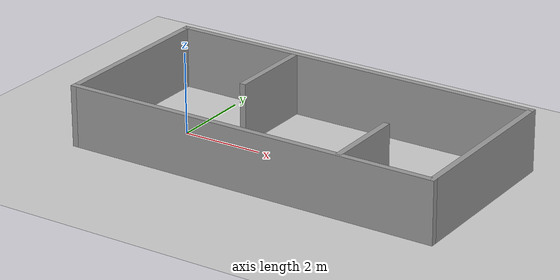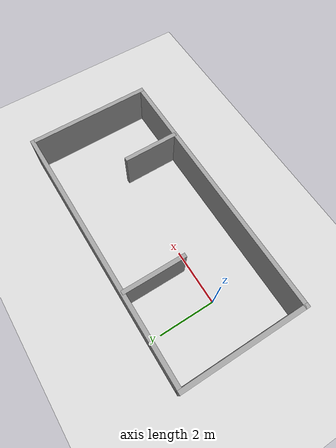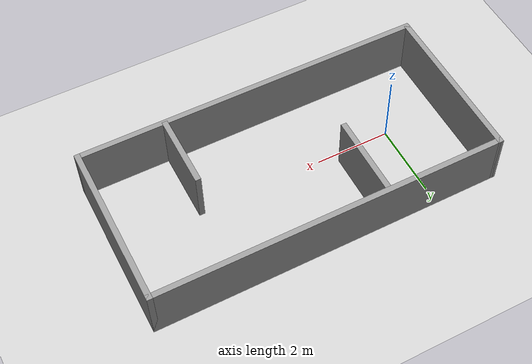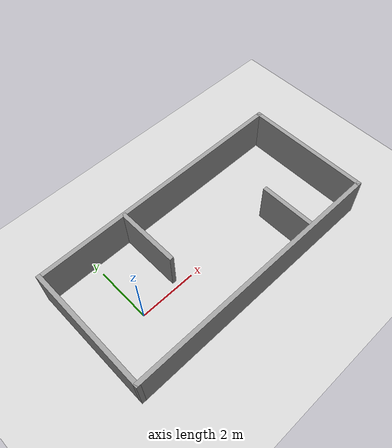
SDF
<sdf version="1.7">
 <world name="default">
  <light name="sun" type="directional">
   <pose>0 0 10 0 -0 0</pose>
   <diffuse>0.8 0.8 0.8 1</diffuse>
   <specular>0.2 0.2 0.2 1</specular>
   <attenuation>
    <range>1000</range>
    <constant>0.9</constant>
    <linear>0.01</linear>
    <quadratic>0.001</quadratic>
   </attenuation>
   <direction>-0.5 0.1 -0.9</direction>
   <spot><inner_angle>0</inner_angle><outer_angle>0</outer_angle><falloff>0</falloff></spot>
  </light>
  <model name="ground_plane">
   <static>1</static>
   <link name="link">
    <collision name="collision">
     <geometry><plane><normal>0 0 1</normal><size>100 100</size></plane></geometry>
     <surface>
      <contact><collide_bitmask>65535</collide_bitmask></contact>
      <friction><ode><mu>100</mu><mu2>50</mu2></ode></friction>
     </surface>
    </collision>
    <visual name="visual">
     <cast_shadows>0</cast_shadows>
     <geometry><plane><normal>0 0 1</normal><size>100 100</size></plane></geometry>
     <material>
      <script><uri>file://media/materials/scripts/gazebo.material</uri><name>Gazebo/Grey</name></script>
     </material>
    </visual>
   </link>
  </model>
  <gravity>0 0 -9.8</gravity>
  <magnetic_field>6e-06 2.3e-05 -4.2e-05</magnetic_field>
  <atmosphere type="adiabatic"/>
  <physics type="ode">
   <max_step_size>0.001</max_step_size>
   <real_time_factor>1</real_time_factor>
   <real_time_update_rate>1000</real_time_update_rate>
  </physics>
  <scene><ambient>0.4 0.4 0.4 1</ambient><background>0.7 0.7 0.7 1</background><shadows>1</shadows></scene>
  <audio><device>default</device></audio>
  <spherical_coordinates>
   <surface_model>EARTH_WGS84</surface_model>
   <latitude_deg>0</latitude_deg>
   <longitude_deg>0</longitude_deg>
   <elevation>0</elevation>
   <heading_deg>0</heading_deg>
  </spherical_coordinates>
  <model name="my_world.world">
   <pose>2.98495 2.7909 0 0 -0 0</pose>
   <link name="Wall_10">
    <collision name="Wall_10_Collision">
     <geometry><box><size>4.5 0.15 1.5</size></box></geometry>
     <pose>0 0 0.75 0 -0 0</pose>
    </collision>
    <visual name="Wall_10_Visual">
     <pose>0 0 0.75 0 -0 0</pose>
     <geometry><box><size>4.5 0.15 1.5</size></box></geometry>
     <material>
      <script><uri>file://media/materials/scripts/gazebo.material</uri><name>Gazebo/Grey</name></script>
      <ambient>1 1 1 1</ambient>
     </material>
     <meta><layer>0</layer></meta>
    </visual>
    <pose>4.675 -2.548 0 0 -0 -1.5708</pose>
   </link>
   <link name="Wall_11">
    <collision name="Wall_11_Collision">
     <geometry><box><size>9.5 0.15 1.5</size></box></geometry>
     <pose>0 0 0.75 0 -0 0</pose>
    </collision>
    <visual name="Wall_11_Visual">
     <pose>0 0 0.75 0 -0 0</pose>
     <geometry><box><size>9.5 0.15 1.5</size></box></geometry>
     <material>
      <script><uri>file://media/materials/scripts/gazebo.material</uri><name>Gazebo/Grey</name></script>
      <ambient>1 1 1 1</ambient>
     </material>
     <meta><layer>0</layer></meta>
    </visual>
    <pose>0 -4.723 0 0 -0 3.14159</pose>
   </link>
   <link name="Wall_12">
    <collision name="Wall_12_Collision">
     <geometry><box><size>4.5 0.15 1.5</size></box></geometry>
     <pose>0 0 0.75 0 -0 0</pose>
    </collision>
    <visual name="Wall_12_Visual">
     <pose>0 0 0.75 0 -0 0</pose>
     <geometry><box><size>4.5 0.15 1.5</size></box></geometry>
     <material>
      <script><uri>file://media/materials/scripts/gazebo.material</uri><name>Gazebo/Grey</name></script>
      <ambient>1 1 1 1</ambient>
     </material>
     <meta><layer>0</layer></meta>
    </visual>
    <pose>-4.675 -2.548 0 0 -0 1.5708</pose>
   </link>
   <link name="Wall_14">
    <collision name="Wall_14_Collision">
     <geometry><box><size>2.25 0.15 1.5</size></box></geometry>
     <pose>0 0 0.75 0 -0 0</pose>
    </collision>
    <visual name="Wall_14_Visual">
     <pose>0 0 0.75 0 -0 0</pose>
     <geometry><box><size>2.25 0.15 1.5</size></box></geometry>
     <material>
      <script><uri>file://media/materials/scripts/gazebo.material</uri><name>Gazebo/Grey</name></script>
      <ambient>1 1 1 1</ambient>
     </material>
     <meta><layer>0</layer></meta>
    </visual>
    <pose>-1.532 -1.475 0 0 -0 -1.5708</pose>
   </link>
   <link name="Wall_16">
    <collision name="Wall_16_Collision">
     <geometry><box><size>2 0.15 1.5</size></box></geometry>
     <pose>0 0 0.75 0 -0 0</pose>
    </collision>
    <visual name="Wall_16_Visual">
     <pose>0 0 0.75 0 -0 0</pose>
     <geometry><box><size>2 0.15 1.5</size></box></geometry>
     <material>
      <script><uri>file://media/materials/scripts/gazebo.material</uri><name>Gazebo/Grey</name></script>
      <ambient>1 1 1 1</ambient>
     </material>
     <meta><layer>0</layer></meta>
    </visual>
    <pose>2.374 -3.735 0 0 -0 1.5708</pose>
   </link>
   <link name="Wall_9">
    <collision name="Wall_9_Collision">
     <geometry><box><size>9.5 0.15 1.5</size></box></geometry>
     <pose>0 0 0.75 0 -0 0</pose>
    </collision>
    <visual name="Wall_9_Visual">
     <pose>0 0 0.75 0 -0 0</pose>
     <geometry><box><size>9.5 0.15 1.5</size></box></geometry>
     <material>
      <script><uri>file://media/materials/scripts/gazebo.material</uri><name>Gazebo/Grey</name></script>
      <ambient>1 1 1 1</ambient>
     </material>
     <meta><layer>0</layer></meta>
    </visual>
    <pose>0 -0.373 0 0 -0 0</pose>
   </link>
   <static>1</static>
  </model>
 </world>
</sdf>
